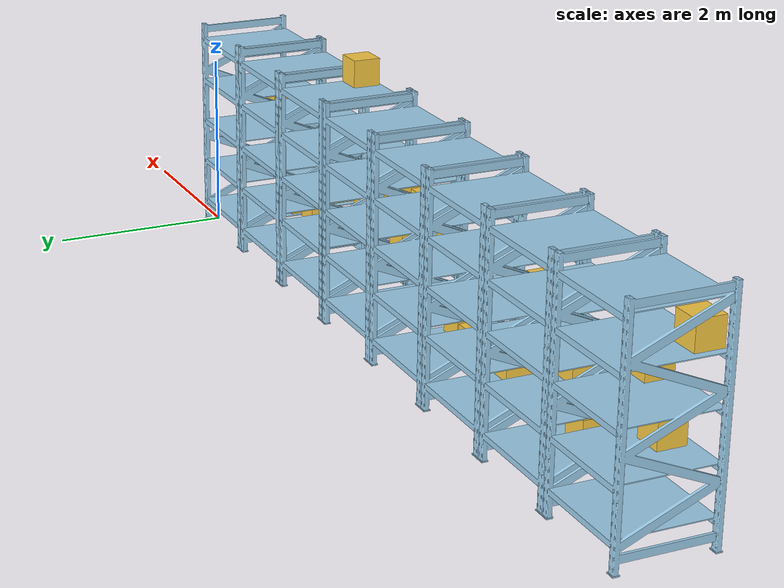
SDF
<?xml version="1.0" ?>
<!-- Shelving unit with boxes -->
<!-- Onshape document_id: 413e77afccf5d41747a34ccc / workspace_id: b5425021473a3ff7e609cc44 -->
<sdf version="1.9">
  <model name="shelves">
    <static>true</static>
    <link name="shelf">
      <!-- Part box -->
      <visual name="box">
        <pose>-2.78049 -0.62 2.38786 0 0 0</pose>
        <geometry><mesh><uri>meshes/caja.stl</uri></mesh></geometry>
        <material>
          <ambient>0.980392 0.796078 0.262745 1</ambient>
          <diffuse>0.980392 0.796078 0.262745 1</diffuse>
        </material>
      </visual>
      <collision name="box_collision">
        <pose>-2.78049 -0.62 2.38786 0 0 0</pose>
        <geometry><mesh><uri>meshes/caja.stl</uri></mesh></geometry>
      </collision>
      <!-- Part shelf_rack -->
      <visual name="shelf_rack_visual">
        <pose>-8.39331 -0.8125 0.0930265 0 0 0</pose>
        <geometry><mesh><uri>meshes/estanteria.stl</uri></mesh></geometry>
        <material>
          <ambient>0.615686 0.811765 0.92549 1</ambient>
          <diffuse>0.615686 0.811765 0.92549 1</diffuse>
        </material>
      </visual>
      <collision name="shelf_rack_collision">
        <pose>-8.39331 -0.8125 0.0930265 0 0 0</pose>
        <geometry><mesh><uri>meshes/estanteria.stl</uri></mesh></geometry>
      </collision>
      <!-- Part shelf_rack_2 -->
      <visual name="shelf_rack_2">
        <pose>-3.67331 -0.8125 0.0930265 0 0 0</pose>
        <geometry><mesh><uri>meshes/estanteria.stl</uri></mesh></geometry>
        <material>
          <ambient>0.615686 0.811765 0.92549 1</ambient>
          <diffuse>0.615686 0.811765 0.92549 1</diffuse>
        </material>
      </visual>
      <collision name="shelf_rack_2_collision">
        <pose>-3.67331 -0.8125 0.0930265 0 0 0</pose>
        <geometry><mesh><uri>meshes/estanteria.stl</uri></mesh></geometry>
      </collision>
      <!-- Part box_2 -->
      <visual name="box_2">
        <pose>-1.6072 -0.6325 0.382277 0 0 0</pose>
        <geometry><mesh><uri>meshes/caja.stl</uri></mesh></geometry>
        <material>
          <ambient>0.980392 0.796078 0.262745 1</ambient>
          <diffuse>0.980392 0.796078 0.262745 1</diffuse>
        </material>
      </visual>
      <collision name="box_2_collision">
        <pose>-1.6072 -0.6325 0.382277 0 0 0</pose>
        <geometry><mesh><uri>meshes/caja.stl</uri></mesh></geometry>
      </collision>
      <!-- Part box_3 -->
      <visual name="box_3">
        <pose>-3.09159 -0.621707 0.880993 0 0 0</pose>
        <geometry><mesh><uri>meshes/caja.stl</uri></mesh></geometry>
        <material>
          <ambient>0.980392 0.796078 0.262745 1</ambient>
          <diffuse>0.980392 0.796078 0.262745 1</diffuse>
        </material>
      </visual>
      <collision name="box_3_collision">
        <pose>-3.09159 -0.621707 0.880993 0 0 0</pose>
        <geometry><mesh><uri>meshes/caja.stl</uri></mesh></geometry>
      </collision>
      <!-- Part box_4 -->
      <visual name="box_4">
        <pose>-5.18688 -0.6725 0.377986 0 0 0</pose>
        <geometry><mesh><uri>meshes/caja.stl</uri></mesh></geometry>
        <material>
          <ambient>0.980392 0.796078 0.262745 1</ambient>
          <diffuse>0.980392 0.796078 0.262745 1</diffuse>
        </material>
      </visual>
      <collision name="box_4_collision">
        <pose>-5.18688 -0.6725 0.377986 0 0 0</pose>
        <geometry><mesh><uri>meshes/caja.stl</uri></mesh></geometry>
      </collision>
      <!-- Part box_5 -->
      <visual name="box_5">
        <pose>-2.20641 -0.6175 0.885253 0 0 0</pose>
        <geometry><mesh><uri>meshes/caja.stl</uri></mesh></geometry>
        <material>
          <ambient>0.980392 0.796078 0.262745 1</ambient>
          <diffuse>0.980392 0.796078 0.262745 1</diffuse>
        </material>
      </visual>
      <collision name="box_5_collision">
        <pose>-2.20641 -0.6175 0.885253 0 0 0</pose>
        <geometry><mesh><uri>meshes/caja.stl</uri></mesh></geometry>
      </collision>
      <!-- Part shelf_rack_3 -->
      <visual name="shelf_rack_3">
        <pose>-2.49331 -0.8125 0.0930265 0 0 0</pose>
        <geometry><mesh><uri>meshes/estanteria.stl</uri></mesh></geometry>
        <material>
          <ambient>0.615686 0.811765 0.92549 1</ambient>
          <diffuse>0.615686 0.811765 0.92549 1</diffuse>
        </material>
      </visual>
      <collision name="shelf_rack_3_collision">
        <pose>-2.49331 -0.8125 0.0930265 0 0 0</pose>
        <geometry><mesh><uri>meshes/estanteria.stl</uri></mesh></geometry>
      </collision>
      <!-- Part shelf_rack_4 -->
      <visual name="shelf_rack_4">
        <pose>-4.85331 -0.8125 0.0930265 0 0 0</pose>
        <geometry><mesh><uri>meshes/estanteria.stl</uri></mesh></geometry>
        <material>
          <ambient>0.615686 0.811765 0.92549 1</ambient>
          <diffuse>0.615686 0.811765 0.92549 1</diffuse>
        </material>
      </visual>
      <collision name="shelf_rack_4_collision">
        <pose>-4.85331 -0.8125 0.0930265 0 0 0</pose>
        <geometry><mesh><uri>meshes/estanteria.stl</uri></mesh></geometry>
      </collision>
      <!-- Part shelf_rack_5 -->
      <visual name="shelf_rack_5">
        <pose>-6.03331 -0.8125 0.0930265 0 0 0</pose>
        <geometry><mesh><uri>meshes/estanteria.stl</uri></mesh></geometry>
        <material>
          <ambient>0.615686 0.811765 0.92549 1</ambient>
          <diffuse>0.615686 0.811765 0.92549 1</diffuse>
        </material>
      </visual>
      <collision name="shelf_rack_5_collision">
        <pose>-6.03331 -0.8125 0.0930265 0 0 0</pose>
        <geometry><mesh><uri>meshes/estanteria.stl</uri></mesh></geometry>
      </collision>
      <!-- Part shelf_rack_6 -->
      <visual name="shelf_rack_6">
        <pose>-7.21331 -0.8125 0.0930265 0 0 0</pose>
        <geometry><mesh><uri>meshes/estanteria.stl</uri></mesh></geometry>
        <material>
          <ambient>0.615686 0.811765 0.92549 1</ambient>
          <diffuse>0.615686 0.811765 0.92549 1</diffuse>
        </material>
      </visual>
      <collision name="shelf_rack_6_collision">
        <pose>-7.21331 -0.8125 0.0930265 0 0 0</pose>
        <geometry><mesh><uri>meshes/estanteria.stl</uri></mesh></geometry>
      </collision>
      <!-- Part box_6 -->
      <visual name="box_6">
        <pose>-1.05503 -0.6175 0.38335 0 0 0</pose>
        <geometry><mesh><uri>meshes/caja.stl</uri></mesh></geometry>
        <material>
          <ambient>0.980392 0.796078 0.262745 1</ambient>
          <diffuse>0.980392 0.796078 0.262745 1</diffuse>
        </material>
      </visual>
      <collision name="box_6_collision">
        <pose>-1.05503 -0.6175 0.38335 0 0 0</pose>
        <geometry><mesh><uri>meshes/caja.stl</uri></mesh></geometry>
      </collision>
      <!-- Part box_7 -->
      <visual name="box_7">
        <pose>-7.82352 -0.5525 0.368958 0 0 0</pose>
        <geometry><mesh><uri>meshes/caja.stl</uri></mesh></geometry>
        <material>
          <ambient>0.980392 0.796078 0.262745 1</ambient>
          <diffuse>0.980392 0.796078 0.262745 1</diffuse>
        </material>
      </visual>
      <collision name="box_7_collision">
        <pose>-7.82352 -0.5525 0.368958 0 0 0</pose>
        <geometry><mesh><uri>meshes/caja.stl</uri></mesh></geometry>
      </collision>
      <!-- Part box_8 -->
      <visual name="box_8">
        <pose>-3.95203 -0.57 1.38433 0 0 0</pose>
        <geometry><mesh><uri>meshes/caja.stl</uri></mesh></geometry>
        <material>
          <ambient>0.980392 0.796078 0.262745 1</ambient>
          <diffuse>0.980392 0.796078 0.262745 1</diffuse>
        </material>
      </visual>
      <collision name="box_8_collision">
        <pose>-3.95203 -0.57 1.38433 0 0 0</pose>
        <geometry><mesh><uri>meshes/caja.stl</uri></mesh></geometry>
      </collision>
      <!-- Part box_9 -->
      <visual name="box_9">
        <pose>-0.447349 -0.655 1.37427 0 0 0</pose>
        <geometry><mesh><uri>meshes/caja.stl</uri></mesh></geometry>
        <material>
          <ambient>0.980392 0.796078 0.262745 1</ambient>
          <diffuse>0.980392 0.796078 0.262745 1</diffuse>
        </material>
      </visual>
      <collision name="box_9_collision">
        <pose>-0.447349 -0.655 1.37427 0 0 0</pose>
        <geometry><mesh><uri>meshes/caja.stl</uri></mesh></geometry>
      </collision>
      <!-- Part shelf_rack_7 -->
      <visual name="shelf_rack_7">
        <pose>-9.57331 -0.8125 0.0930265 0 0 0</pose>
        <geometry><mesh><uri>meshes/estanteria.stl</uri></mesh></geometry>
        <material>
          <ambient>0.615686 0.811765 0.92549 1</ambient>
          <diffuse>0.615686 0.811765 0.92549 1</diffuse>
        </material>
      </visual>
      <collision name="shelf_rack_7_collision">
        <pose>-9.57331 -0.8125 0.0930265 0 0 0</pose>
        <geometry><mesh><uri>meshes/estanteria.stl</uri></mesh></geometry>
      </collision>
      <!-- Part box_10 -->
      <visual name="box_10">
        <pose>-8.66574 -0.6025 1.37491 0 0 0</pose>
        <geometry><mesh><uri>meshes/caja.stl</uri></mesh></geometry>
        <material>
          <ambient>0.980392 0.796078 0.262745 1</ambient>
          <diffuse>0.980392 0.796078 0.262745 1</diffuse>
        </material>
      </visual>
      <collision name="box_10_collision">
        <pose>-8.66574 -0.6025 1.37491 0 0 0</pose>
        <geometry><mesh><uri>meshes/caja.stl</uri></mesh></geometry>
      </collision>
      <!-- Part box_11 -->
      <visual name="box_11">
        <pose>-8.96428 -0.565 0.881478 0 0 0</pose>
        <geometry><mesh><uri>meshes/caja.stl</uri></mesh></geometry>
        <material>
          <ambient>0.980392 0.796078 0.262745 1</ambient>
          <diffuse>0.980392 0.796078 0.262745 1</diffuse>
        </material>
      </visual>
      <collision name="box_11_collision">
        <pose>-8.96428 -0.565 0.881478 0 0 0</pose>
        <geometry><mesh><uri>meshes/caja.stl</uri></mesh></geometry>
      </collision>
      <!-- Part box_12 -->
      <visual name="box_12">
        <pose>-5.74187 -0.55 0.38081 0 0 0</pose>
        <geometry><mesh><uri>meshes/caja.stl</uri></mesh></geometry>
        <material>
          <ambient>0.980392 0.796078 0.262745 1</ambient>
          <diffuse>0.980392 0.796078 0.262745 1</diffuse>
        </material>
      </visual>
      <collision name="box_12_collision">
        <pose>-5.74187 -0.55 0.38081 0 0 0</pose>
        <geometry><mesh><uri>meshes/caja.stl</uri></mesh></geometry>
      </collision>
      <!-- Part box_13 -->
      <visual name="box_13">
        <pose>-6.29403 -0.625 0.386296 0 0 0</pose>
        <geometry><mesh><uri>meshes/caja.stl</uri></mesh></geometry>
        <material>
          <ambient>0.980392 0.796078 0.262745 1</ambient>
          <diffuse>0.980392 0.796078 0.262745 1</diffuse>
        </material>
      </visual>
      <collision name="box_13_collision">
        <pose>-6.29403 -0.625 0.386296 0 0 0</pose>
        <geometry><mesh><uri>meshes/caja.stl</uri></mesh></geometry>
      </collision>
      <!-- Part box_14 -->
      <visual name="box_14">
        <pose>-9.29 -0.64 1.89 0 0 0</pose>
        <geometry><mesh><uri>meshes/caja.stl</uri></mesh></geometry>
        <material>
          <ambient>0.980392 0.796078 0.262745 1</ambient>
          <diffuse>0.980392 0.796078 0.262745 1</diffuse>
        </material>
      </visual>
      <collision name="box_14_collision">
        <pose>-9.29 -0.64 1.89 0 0 0</pose>
        <geometry><mesh><uri>meshes/caja.stl</uri></mesh></geometry>
      </collision>
      <!-- Part box_15 -->
      <visual name="box_15">
        <pose>-6.95548 -0.5875 1.37829 0 0 0</pose>
        <geometry><mesh><uri>meshes/caja.stl</uri></mesh></geometry>
        <material>
          <ambient>0.980392 0.796078 0.262745 1</ambient>
          <diffuse>0.980392 0.796078 0.262745 1</diffuse>
        </material>
      </visual>
      <collision name="box_15_collision">
        <pose>-6.95548 -0.5875 1.37829 0 0 0</pose>
        <geometry><mesh><uri>meshes/caja.stl</uri></mesh></geometry>
      </collision>
      <!-- Part box_16 -->
      <visual name="box_16">
        <pose>-4.46562 -0.6325 1.38183 0 0 0</pose>
        <geometry><mesh><uri>meshes/caja.stl</uri></mesh></geometry>
        <material>
          <ambient>0.980392 0.796078 0.262745 1</ambient>
          <diffuse>0.980392 0.796078 0.262745 1</diffuse>
        </material>
      </visual>
      <collision name="box_16_collision">
        <pose>-4.46562 -0.6325 1.38183 0 0 0</pose>
        <geometry><mesh><uri>meshes/caja.stl</uri></mesh></geometry>
      </collision>
      <!-- Part box_17 -->
      <visual name="box_17">
        <pose>-7.54515 -0.59 0.886883 0 0 0</pose>
        <geometry><mesh><uri>meshes/caja.stl</uri></mesh></geometry>
        <material>
          <ambient>0.980392 0.796078 0.262745 1</ambient>
          <diffuse>0.980392 0.796078 0.262745 1</diffuse>
        </material>
      </visual>
      <collision name="box_17_collision">
        <pose>-7.54515 -0.59 0.886883 0 0 0</pose>
        <geometry><mesh><uri>meshes/caja.stl</uri></mesh></geometry>
      </collision>
      <!-- Part box_18 -->
      <visual name="box_18">
        <pose>-8.12702 -0.6275 0.878654 0 0 0</pose>
        <geometry><mesh><uri>meshes/caja.stl</uri></mesh></geometry>
        <material>
          <ambient>0.980392 0.796078 0.262745 1</ambient>
          <diffuse>0.980392 0.796078 0.262745 1</diffuse>
        </material>
      </visual>
      <collision name="box_18_collision">
        <pose>-8.12702 -0.6275 0.878654 0 0 0</pose>
        <geometry><mesh><uri>meshes/caja.stl</uri></mesh></geometry>
      </collision>
      <!-- Part box_19 -->
      <visual name="box_19">
        <pose>-3.9531 -0.645 0.87249 0 0 0</pose>
        <geometry><mesh><uri>meshes/caja.stl</uri></mesh></geometry>
        <material>
          <ambient>0.980392 0.796078 0.262745 1</ambient>
          <diffuse>0.980392 0.796078 0.262745 1</diffuse>
        </material>
      </visual>
      <collision name="box_19_collision">
        <pose>-3.9531 -0.645 0.87249 0 0 0</pose>
        <geometry><mesh><uri>meshes/caja.stl</uri></mesh></geometry>
      </collision>
      <!-- Part shelf_rack_8 -->
      <visual name="shelf_rack_8">
        <pose>-1.31331 -0.8125 0.0930265 0 0 0</pose>
        <geometry><mesh><uri>meshes/estanteria.stl</uri></mesh></geometry>
        <material>
          <ambient>0.615686 0.811765 0.92549 1</ambient>
          <diffuse>0.615686 0.811765 0.92549 1</diffuse>
        </material>
      </visual>
      <collision name="shelf_rack_8_collision">
        <pose>-1.31331 -0.8125 0.0930265 0 0 0</pose>
        <geometry><mesh><uri>meshes/estanteria.stl</uri></mesh></geometry>
      </collision>
      <!-- Part box_20 -->
      <visual name="box_20">
        <pose>-4.51374 -0.6375 0.883108 0 0 0</pose>
        <geometry><mesh><uri>meshes/caja.stl</uri></mesh></geometry>
        <material>
          <ambient>0.980392 0.796078 0.262745 1</ambient>
          <diffuse>0.980392 0.796078 0.262745 1</diffuse>
        </material>
      </visual>
      <collision name="box_20_collision">
        <pose>-4.51374 -0.6375 0.883108 0 0 0</pose>
        <geometry><mesh><uri>meshes/caja.stl</uri></mesh></geometry>
      </collision>
    </link>
  </model>
</sdf>
